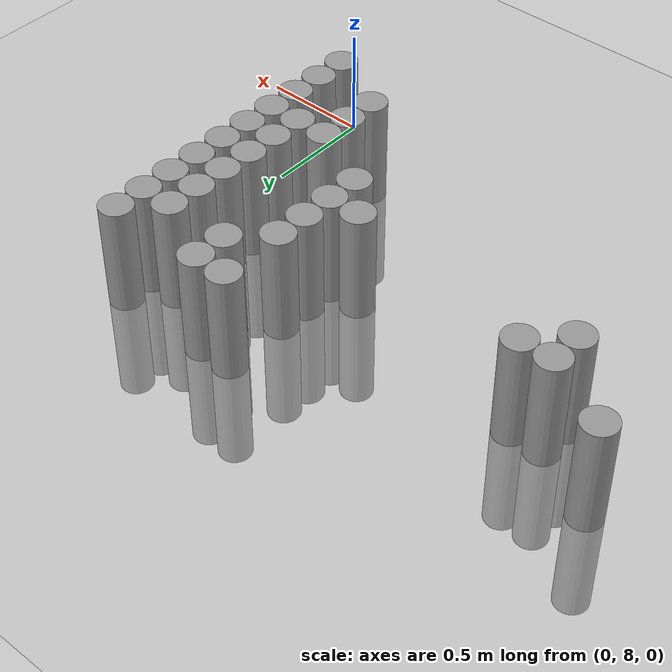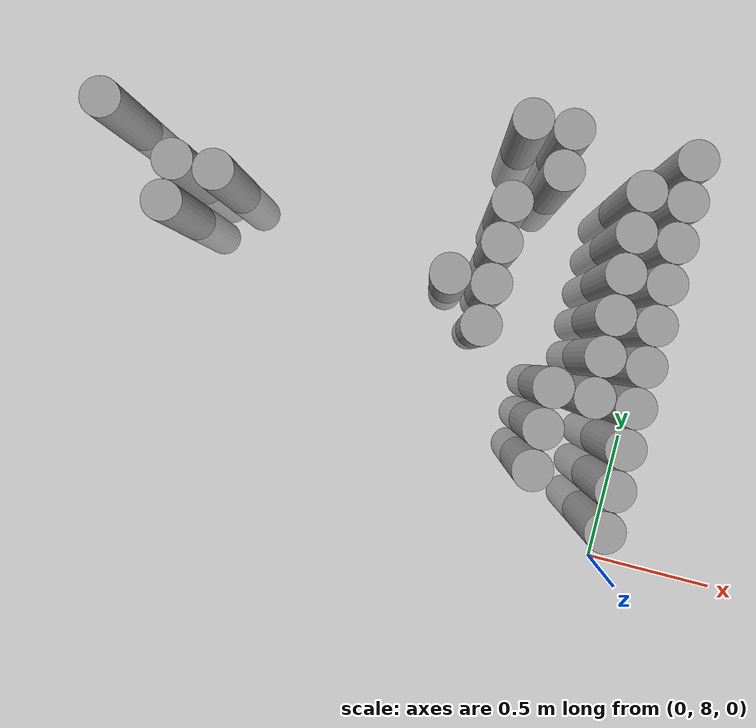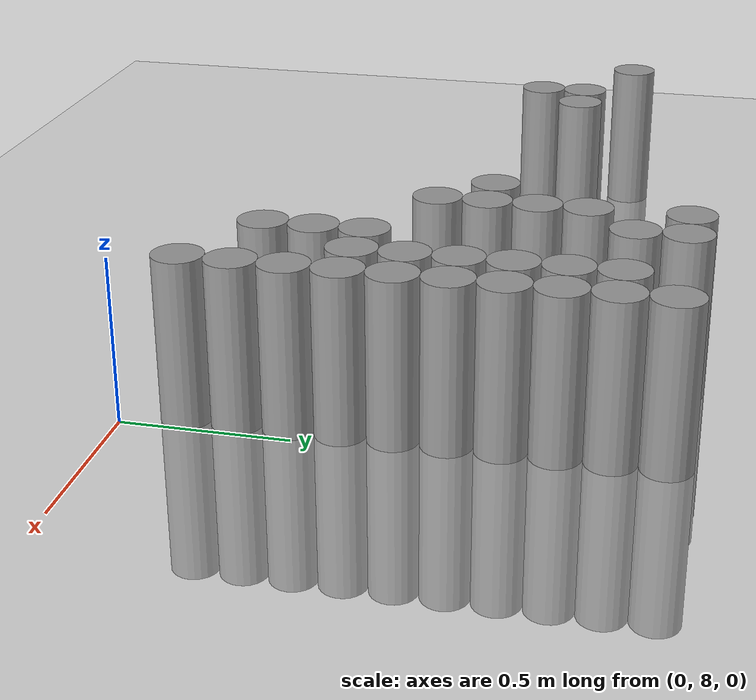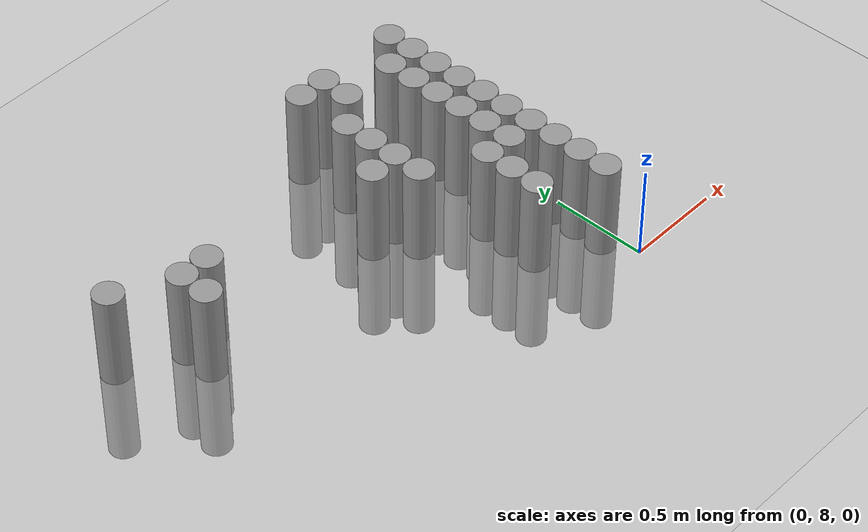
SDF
<sdf version="1.6">
 <world name="default">
  <model name="ground_plane">
   <static>1</static>
   <static>1</static>
   <link name="link">
    <collision name="collision">
     <geometry><plane><normal>0 0 1</normal><size>100 100</size></plane></geometry>
     <surface><friction><ode><mu>100</mu><mu2>50</mu2></ode></friction></surface>
    </collision>
    <visual name="visual">
     <cast_shadows>0</cast_shadows>
     <geometry><plane><normal>0 0 1</normal><size>100 100</size></plane></geometry>
     <material>
      <script><uri>file://media/materials/scripts/gazebo.material</uri><name>Gazebo/Grey</name></script>
     </material>
    </visual>
   </link>
  </model>
  <model name="unit_cylinder_166">
   <static>1</static>
   <pose>-2.175000 9.225000 0.000000 0.000000 0.000000 0.000000</pose>
   <link name="link">
    <inertial>
     <mass>1</mass>
     <inertia><ixx>0.145833</ixx><ixy>0</ixy><ixz>0</ixz><iyy>0.145833</iyy><iyz>0</iyz><izz>0.125</izz></inertia>
    </inertial>
    <collision name="collision">
     <geometry><cylinder><radius>0.075000</radius><length>1</length></cylinder></geometry>
    </collision>
    <visual name="visual">
     <geometry><cylinder><radius>0.075000</radius><length>1</length></cylinder></geometry>
     <material>
      <script><name>Gazebo/Grey</name><uri>file://media/materials/scripts/gazebo.material</uri></script>
     </material>
    </visual>
   </link>
  </model>
  <model name="unit_cylinder_170">
   <static>1</static>
   <pose>-1.875000 8.925000 0.000000 0.000000 0.000000 0.000000</pose>
   <link name="link">
    <inertial>
     <mass>1</mass>
     <inertia><ixx>0.145833</ixx><ixy>0</ixy><ixz>0</ixz><iyy>0.145833</iyy><iyz>0</iyz><izz>0.125</izz></inertia>
    </inertial>
    <collision name="collision">
     <geometry><cylinder><radius>0.075000</radius><length>1</length></cylinder></geometry>
    </collision>
    <visual name="visual">
     <geometry><cylinder><radius>0.075000</radius><length>1</length></cylinder></geometry>
     <material>
      <script><name>Gazebo/Grey</name><uri>file://media/materials/scripts/gazebo.material</uri></script>
     </material>
    </visual>
   </link>
  </model>
  <model name="unit_cylinder_171">
   <static>1</static>
   <pose>-1.875000 9.075000 0.000000 0.000000 0.000000 0.000000</pose>
   <link name="link">
    <inertial>
     <mass>1</mass>
     <inertia><ixx>0.145833</ixx><ixy>0</ixy><ixz>0</ixz><iyy>0.145833</iyy><iyz>0</iyz><izz>0.125</izz></inertia>
    </inertial>
    <collision name="collision">
     <geometry><cylinder><radius>0.075000</radius><length>1</length></cylinder></geometry>
    </collision>
    <visual name="visual">
     <geometry><cylinder><radius>0.075000</radius><length>1</length></cylinder></geometry>
     <material>
      <script><name>Gazebo/Grey</name><uri>file://media/materials/scripts/gazebo.material</uri></script>
     </material>
    </visual>
   </link>
  </model>
  <model name="unit_cylinder_175">
   <static>1</static>
   <pose>-1.725000 9.075000 0.000000 0.000000 0.000000 0.000000</pose>
   <link name="link">
    <inertial>
     <mass>1</mass>
     <inertia><ixx>0.145833</ixx><ixy>0</ixy><ixz>0</ixz><iyy>0.145833</iyy><iyz>0</iyz><izz>0.125</izz></inertia>
    </inertial>
    <collision name="collision">
     <geometry><cylinder><radius>0.075000</radius><length>1</length></cylinder></geometry>
    </collision>
    <visual name="visual">
     <geometry><cylinder><radius>0.075000</radius><length>1</length></cylinder></geometry>
     <material>
      <script><name>Gazebo/Grey</name><uri>file://media/materials/scripts/gazebo.material</uri></script>
     </material>
    </visual>
   </link>
  </model>
  <model name="unit_cylinder_182">
   <static>1</static>
   <pose>-0.825000 8.925000 0.000000 0.000000 0.000000 0.000000</pose>
   <link name="link">
    <inertial>
     <mass>1</mass>
     <inertia><ixx>0.145833</ixx><ixy>0</ixy><ixz>0</ixz><iyy>0.145833</iyy><iyz>0</iyz><izz>0.125</izz></inertia>
    </inertial>
    <collision name="collision">
     <geometry><cylinder><radius>0.075000</radius><length>1</length></cylinder></geometry>
    </collision>
    <visual name="visual">
     <geometry><cylinder><radius>0.075000</radius><length>1</length></cylinder></geometry>
     <material>
      <script><name>Gazebo/Grey</name><uri>file://media/materials/scripts/gazebo.material</uri></script>
     </material>
    </visual>
   </link>
  </model>
  <model name="unit_cylinder_185">
   <static>1</static>
   <pose>-0.675000 8.775000 0.000000 0.000000 0.000000 0.000000</pose>
   <link name="link">
    <inertial>
     <mass>1</mass>
     <inertia><ixx>0.145833</ixx><ixy>0</ixy><ixz>0</ixz><iyy>0.145833</iyy><iyz>0</iyz><izz>0.125</izz></inertia>
    </inertial>
    <collision name="collision">
     <geometry><cylinder><radius>0.075000</radius><length>1</length></cylinder></geometry>
    </collision>
    <visual name="visual">
     <geometry><cylinder><radius>0.075000</radius><length>1</length></cylinder></geometry>
     <material>
      <script><name>Gazebo/Grey</name><uri>file://media/materials/scripts/gazebo.material</uri></script>
     </material>
    </visual>
   </link>
  </model>
  <model name="unit_cylinder_186">
   <static>1</static>
   <pose>-0.675000 8.925000 0.000000 0.000000 0.000000 0.000000</pose>
   <link name="link">
    <inertial>
     <mass>1</mass>
     <inertia><ixx>0.145833</ixx><ixy>0</ixy><ixz>0</ixz><iyy>0.145833</iyy><iyz>0</iyz><izz>0.125</izz></inertia>
    </inertial>
    <collision name="collision">
     <geometry><cylinder><radius>0.075000</radius><length>1</length></cylinder></geometry>
    </collision>
    <visual name="visual">
     <geometry><cylinder><radius>0.075000</radius><length>1</length></cylinder></geometry>
     <material>
      <script><name>Gazebo/Grey</name><uri>file://media/materials/scripts/gazebo.material</uri></script>
     </material>
    </visual>
   </link>
  </model>
  <model name="unit_cylinder_187">
   <static>1</static>
   <pose>-0.675000 9.075000 0.000000 0.000000 0.000000 0.000000</pose>
   <link name="link">
    <inertial>
     <mass>1</mass>
     <inertia><ixx>0.145833</ixx><ixy>0</ixy><ixz>0</ixz><iyy>0.145833</iyy><iyz>0</iyz><izz>0.125</izz></inertia>
    </inertial>
    <collision name="collision">
     <geometry><cylinder><radius>0.075000</radius><length>1</length></cylinder></geometry>
    </collision>
    <visual name="visual">
     <geometry><cylinder><radius>0.075000</radius><length>1</length></cylinder></geometry>
     <material>
      <script><name>Gazebo/Grey</name><uri>file://media/materials/scripts/gazebo.material</uri></script>
     </material>
    </visual>
   </link>
  </model>
  <model name="unit_cylinder_188">
   <static>1</static>
   <pose>-0.675000 9.225000 0.000000 0.000000 0.000000 0.000000</pose>
   <link name="link">
    <inertial>
     <mass>1</mass>
     <inertia><ixx>0.145833</ixx><ixy>0</ixy><ixz>0</ixz><iyy>0.145833</iyy><iyz>0</iyz><izz>0.125</izz></inertia>
    </inertial>
    <collision name="collision">
     <geometry><cylinder><radius>0.075000</radius><length>1</length></cylinder></geometry>
    </collision>
    <visual name="visual">
     <geometry><cylinder><radius>0.075000</radius><length>1</length></cylinder></geometry>
     <material>
      <script><name>Gazebo/Grey</name><uri>file://media/materials/scripts/gazebo.material</uri></script>
     </material>
    </visual>
   </link>
  </model>
  <model name="unit_cylinder_189">
   <static>1</static>
   <pose>-0.675000 9.525000 0.000000 0.000000 0.000000 0.000000</pose>
   <link name="link">
    <inertial>
     <mass>1</mass>
     <inertia><ixx>0.145833</ixx><ixy>0</ixy><ixz>0</ixz><iyy>0.145833</iyy><iyz>0</iyz><izz>0.125</izz></inertia>
    </inertial>
    <collision name="collision">
     <geometry><cylinder><radius>0.075000</radius><length>1</length></cylinder></geometry>
    </collision>
    <visual name="visual">
     <geometry><cylinder><radius>0.075000</radius><length>1</length></cylinder></geometry>
     <material>
      <script><name>Gazebo/Grey</name><uri>file://media/materials/scripts/gazebo.material</uri></script>
     </material>
    </visual>
   </link>
  </model>
  <model name="unit_cylinder_192">
   <static>1</static>
   <pose>-0.525000 9.375000 0.000000 0.000000 0.000000 0.000000</pose>
   <link name="link">
    <inertial>
     <mass>1</mass>
     <inertia><ixx>0.145833</ixx><ixy>0</ixy><ixz>0</ixz><iyy>0.145833</iyy><iyz>0</iyz><izz>0.125</izz></inertia>
    </inertial>
    <collision name="collision">
     <geometry><cylinder><radius>0.075000</radius><length>1</length></cylinder></geometry>
    </collision>
    <visual name="visual">
     <geometry><cylinder><radius>0.075000</radius><length>1</length></cylinder></geometry>
     <material>
      <script><name>Gazebo/Grey</name><uri>file://media/materials/scripts/gazebo.material</uri></script>
     </material>
    </visual>
   </link>
  </model>
  <model name="unit_cylinder_193">
   <static>1</static>
   <pose>-0.525000 9.525000 0.000000 0.000000 0.000000 0.000000</pose>
   <link name="link">
    <inertial>
     <mass>1</mass>
     <inertia><ixx>0.145833</ixx><ixy>0</ixy><ixz>0</ixz><iyy>0.145833</iyy><iyz>0</iyz><izz>0.125</izz></inertia>
    </inertial>
    <collision name="collision">
     <geometry><cylinder><radius>0.075000</radius><length>1</length></cylinder></geometry>
    </collision>
    <visual name="visual">
     <geometry><cylinder><radius>0.075000</radius><length>1</length></cylinder></geometry>
     <material>
      <script><name>Gazebo/Grey</name><uri>file://media/materials/scripts/gazebo.material</uri></script>
     </material>
    </visual>
   </link>
  </model>
  <model name="unit_cylinder_197">
   <static>1</static>
   <pose>-0.375000 8.325000 0.000000 0.000000 0.000000 0.000000</pose>
   <link name="link">
    <inertial>
     <mass>1</mass>
     <inertia><ixx>0.145833</ixx><ixy>0</ixy><ixz>0</ixz><iyy>0.145833</iyy><iyz>0</iyz><izz>0.125</izz></inertia>
    </inertial>
    <collision name="collision">
     <geometry><cylinder><radius>0.075000</radius><length>1</length></cylinder></geometry>
    </collision>
    <visual name="visual">
     <geometry><cylinder><radius>0.075000</radius><length>1</length></cylinder></geometry>
     <material>
      <script><name>Gazebo/Grey</name><uri>file://media/materials/scripts/gazebo.material</uri></script>
     </material>
    </visual>
   </link>
  </model>
  <model name="unit_cylinder_198">
   <static>1</static>
   <pose>-0.375000 8.475000 0.000000 0.000000 0.000000 0.000000</pose>
   <link name="link">
    <inertial>
     <mass>1</mass>
     <inertia><ixx>0.145833</ixx><ixy>0</ixy><ixz>0</ixz><iyy>0.145833</iyy><iyz>0</iyz><izz>0.125</izz></inertia>
    </inertial>
    <collision name="collision">
     <geometry><cylinder><radius>0.075000</radius><length>1</length></cylinder></geometry>
    </collision>
    <visual name="visual">
     <geometry><cylinder><radius>0.075000</radius><length>1</length></cylinder></geometry>
     <material>
      <script><name>Gazebo/Grey</name><uri>file://media/materials/scripts/gazebo.material</uri></script>
     </material>
    </visual>
   </link>
  </model>
  <model name="unit_cylinder_199">
   <static>1</static>
   <pose>-0.375000 8.625000 0.000000 0.000000 0.000000 0.000000</pose>
   <link name="link">
    <inertial>
     <mass>1</mass>
     <inertia><ixx>0.145833</ixx><ixy>0</ixy><ixz>0</ixz><iyy>0.145833</iyy><iyz>0</iyz><izz>0.125</izz></inertia>
    </inertial>
    <collision name="collision">
     <geometry><cylinder><radius>0.075000</radius><length>1</length></cylinder></geometry>
    </collision>
    <visual name="visual">
     <geometry><cylinder><radius>0.075000</radius><length>1</length></cylinder></geometry>
     <material>
      <script><name>Gazebo/Grey</name><uri>file://media/materials/scripts/gazebo.material</uri></script>
     </material>
    </visual>
   </link>
  </model>
  <model name="unit_cylinder_205">
   <static>1</static>
   <pose>-0.225000 8.625000 0.000000 0.000000 0.000000 0.000000</pose>
   <link name="link">
    <inertial>
     <mass>1</mass>
     <inertia><ixx>0.145833</ixx><ixy>0</ixy><ixz>0</ixz><iyy>0.145833</iyy><iyz>0</iyz><izz>0.125</izz></inertia>
    </inertial>
    <collision name="collision">
     <geometry><cylinder><radius>0.075000</radius><length>1</length></cylinder></geometry>
    </collision>
    <visual name="visual">
     <geometry><cylinder><radius>0.075000</radius><length>1</length></cylinder></geometry>
     <material>
      <script><name>Gazebo/Grey</name><uri>file://media/materials/scripts/gazebo.material</uri></script>
     </material>
    </visual>
   </link>
  </model>
  <model name="unit_cylinder_206">
   <static>1</static>
   <pose>-0.225000 8.775000 0.000000 0.000000 0.000000 0.000000</pose>
   <link name="link">
    <inertial>
     <mass>1</mass>
     <inertia><ixx>0.145833</ixx><ixy>0</ixy><ixz>0</ixz><iyy>0.145833</iyy><iyz>0</iyz><izz>0.125</izz></inertia>
    </inertial>
    <collision name="collision">
     <geometry><cylinder><radius>0.075000</radius><length>1</length></cylinder></geometry>
    </collision>
    <visual name="visual">
     <geometry><cylinder><radius>0.075000</radius><length>1</length></cylinder></geometry>
     <material>
      <script><name>Gazebo/Grey</name><uri>file://media/materials/scripts/gazebo.material</uri></script>
     </material>
    </visual>
   </link>
  </model>
  <model name="unit_cylinder_207">
   <static>1</static>
   <pose>-0.225000 8.925000 0.000000 0.000000 0.000000 0.000000</pose>
   <link name="link">
    <inertial>
     <mass>1</mass>
     <inertia><ixx>0.145833</ixx><ixy>0</ixy><ixz>0</ixz><iyy>0.145833</iyy><iyz>0</iyz><izz>0.125</izz></inertia>
    </inertial>
    <collision name="collision">
     <geometry><cylinder><radius>0.075000</radius><length>1</length></cylinder></geometry>
    </collision>
    <visual name="visual">
     <geometry><cylinder><radius>0.075000</radius><length>1</length></cylinder></geometry>
     <material>
      <script><name>Gazebo/Grey</name><uri>file://media/materials/scripts/gazebo.material</uri></script>
     </material>
    </visual>
   </link>
  </model>
  <model name="unit_cylinder_208">
   <static>1</static>
   <pose>-0.225000 9.075000 0.000000 0.000000 0.000000 0.000000</pose>
   <link name="link">
    <inertial>
     <mass>1</mass>
     <inertia><ixx>0.145833</ixx><ixy>0</ixy><ixz>0</ixz><iyy>0.145833</iyy><iyz>0</iyz><izz>0.125</izz></inertia>
    </inertial>
    <collision name="collision">
     <geometry><cylinder><radius>0.075000</radius><length>1</length></cylinder></geometry>
    </collision>
    <visual name="visual">
     <geometry><cylinder><radius>0.075000</radius><length>1</length></cylinder></geometry>
     <material>
      <script><name>Gazebo/Grey</name><uri>file://media/materials/scripts/gazebo.material</uri></script>
     </material>
    </visual>
   </link>
  </model>
  <model name="unit_cylinder_209">
   <static>1</static>
   <pose>-0.225000 9.225000 0.000000 0.000000 0.000000 0.000000</pose>
   <link name="link">
    <inertial>
     <mass>1</mass>
     <inertia><ixx>0.145833</ixx><ixy>0</ixy><ixz>0</ixz><iyy>0.145833</iyy><iyz>0</iyz><izz>0.125</izz></inertia>
    </inertial>
    <collision name="collision">
     <geometry><cylinder><radius>0.075000</radius><length>1</length></cylinder></geometry>
    </collision>
    <visual name="visual">
     <geometry><cylinder><radius>0.075000</radius><length>1</length></cylinder></geometry>
     <material>
      <script><name>Gazebo/Grey</name><uri>file://media/materials/scripts/gazebo.material</uri></script>
     </material>
    </visual>
   </link>
  </model>
  <model name="unit_cylinder_210">
   <static>1</static>
   <pose>-0.225000 9.375000 0.000000 0.000000 0.000000 0.000000</pose>
   <link name="link">
    <inertial>
     <mass>1</mass>
     <inertia><ixx>0.145833</ixx><ixy>0</ixy><ixz>0</ixz><iyy>0.145833</iyy><iyz>0</iyz><izz>0.125</izz></inertia>
    </inertial>
    <collision name="collision">
     <geometry><cylinder><radius>0.075000</radius><length>1</length></cylinder></geometry>
    </collision>
    <visual name="visual">
     <geometry><cylinder><radius>0.075000</radius><length>1</length></cylinder></geometry>
     <material>
      <script><name>Gazebo/Grey</name><uri>file://media/materials/scripts/gazebo.material</uri></script>
     </material>
    </visual>
   </link>
  </model>
  <model name="unit_cylinder_231">
   <static>1</static>
   <pose>-0.075000 8.175000 0.000000 0.000000 0.000000 0.000000</pose>
   <link name="link">
    <inertial>
     <mass>1</mass>
     <inertia><ixx>0.145833</ixx><ixy>0</ixy><ixz>0</ixz><iyy>0.145833</iyy><iyz>0</iyz><izz>0.125</izz></inertia>
    </inertial>
    <collision name="collision">
     <geometry><cylinder><radius>0.075000</radius><length>1</length></cylinder></geometry>
    </collision>
    <visual name="visual">
     <geometry><cylinder><radius>0.075000</radius><length>1</length></cylinder></geometry>
     <material>
      <script><name>Gazebo/Grey</name><uri>file://media/materials/scripts/gazebo.material</uri></script>
     </material>
    </visual>
   </link>
  </model>
  <model name="unit_cylinder_232">
   <static>1</static>
   <pose>-0.075000 8.325000 0.000000 0.000000 0.000000 0.000000</pose>
   <link name="link">
    <inertial>
     <mass>1</mass>
     <inertia><ixx>0.145833</ixx><ixy>0</ixy><ixz>0</ixz><iyy>0.145833</iyy><iyz>0</iyz><izz>0.125</izz></inertia>
    </inertial>
    <collision name="collision">
     <geometry><cylinder><radius>0.075000</radius><length>1</length></cylinder></geometry>
    </collision>
    <visual name="visual">
     <geometry><cylinder><radius>0.075000</radius><length>1</length></cylinder></geometry>
     <material>
      <script><name>Gazebo/Grey</name><uri>file://media/materials/scripts/gazebo.material</uri></script>
     </material>
    </visual>
   </link>
  </model>
  <model name="unit_cylinder_233">
   <static>1</static>
   <pose>-0.075000 8.475000 0.000000 0.000000 0.000000 0.000000</pose>
   <link name="link">
    <inertial>
     <mass>1</mass>
     <inertia><ixx>0.145833</ixx><ixy>0</ixy><ixz>0</ixz><iyy>0.145833</iyy><iyz>0</iyz><izz>0.125</izz></inertia>
    </inertial>
    <collision name="collision">
     <geometry><cylinder><radius>0.075000</radius><length>1</length></cylinder></geometry>
    </collision>
    <visual name="visual">
     <geometry><cylinder><radius>0.075000</radius><length>1</length></cylinder></geometry>
     <material>
      <script><name>Gazebo/Grey</name><uri>file://media/materials/scripts/gazebo.material</uri></script>
     </material>
    </visual>
   </link>
  </model>
  <model name="unit_cylinder_234">
   <static>1</static>
   <pose>-0.075000 8.625000 0.000000 0.000000 0.000000 0.000000</pose>
   <link name="link">
    <inertial>
     <mass>1</mass>
     <inertia><ixx>0.145833</ixx><ixy>0</ixy><ixz>0</ixz><iyy>0.145833</iyy><iyz>0</iyz><izz>0.125</izz></inertia>
    </inertial>
    <collision name="collision">
     <geometry><cylinder><radius>0.075000</radius><length>1</length></cylinder></geometry>
    </collision>
    <visual name="visual">
     <geometry><cylinder><radius>0.075000</radius><length>1</length></cylinder></geometry>
     <material>
      <script><name>Gazebo/Grey</name><uri>file://media/materials/scripts/gazebo.material</uri></script>
     </material>
    </visual>
   </link>
  </model>
  <model name="unit_cylinder_235">
   <static>1</static>
   <pose>-0.075000 8.775000 0.000000 0.000000 0.000000 0.000000</pose>
   <link name="link">
    <inertial>
     <mass>1</mass>
     <inertia><ixx>0.145833</ixx><ixy>0</ixy><ixz>0</ixz><iyy>0.145833</iyy><iyz>0</iyz><izz>0.125</izz></inertia>
    </inertial>
    <collision name="collision">
     <geometry><cylinder><radius>0.075000</radius><length>1</length></cylinder></geometry>
    </collision>
    <visual name="visual">
     <geometry><cylinder><radius>0.075000</radius><length>1</length></cylinder></geometry>
     <material>
      <script><name>Gazebo/Grey</name><uri>file://media/materials/scripts/gazebo.material</uri></script>
     </material>
    </visual>
   </link>
  </model>
  <model name="unit_cylinder_236">
   <static>1</static>
   <pose>-0.075000 8.925000 0.000000 0.000000 0.000000 0.000000</pose>
   <link name="link">
    <inertial>
     <mass>1</mass>
     <inertia><ixx>0.145833</ixx><ixy>0</ixy><ixz>0</ixz><iyy>0.145833</iyy><iyz>0</iyz><izz>0.125</izz></inertia>
    </inertial>
    <collision name="collision">
     <geometry><cylinder><radius>0.075000</radius><length>1</length></cylinder></geometry>
    </collision>
    <visual name="visual">
     <geometry><cylinder><radius>0.075000</radius><length>1</length></cylinder></geometry>
     <material>
      <script><name>Gazebo/Grey</name><uri>file://media/materials/scripts/gazebo.material</uri></script>
     </material>
    </visual>
   </link>
  </model>
  <model name="unit_cylinder_237">
   <static>1</static>
   <pose>-0.075000 9.075000 0.000000 0.000000 0.000000 0.000000</pose>
   <link name="link">
    <inertial>
     <mass>1</mass>
     <inertia><ixx>0.145833</ixx><ixy>0</ixy><ixz>0</ixz><iyy>0.145833</iyy><iyz>0</iyz><izz>0.125</izz></inertia>
    </inertial>
    <collision name="collision">
     <geometry><cylinder><radius>0.075000</radius><length>1</length></cylinder></geometry>
    </collision>
    <visual name="visual">
     <geometry><cylinder><radius>0.075000</radius><length>1</length></cylinder></geometry>
     <material>
      <script><name>Gazebo/Grey</name><uri>file://media/materials/scripts/gazebo.material</uri></script>
     </material>
    </visual>
   </link>
  </model>
  <model name="unit_cylinder_238">
   <static>1</static>
   <pose>-0.075000 9.225000 0.000000 0.000000 0.000000 0.000000</pose>
   <link name="link">
    <inertial>
     <mass>1</mass>
     <inertia><ixx>0.145833</ixx><ixy>0</ixy><ixz>0</ixz><iyy>0.145833</iyy><iyz>0</iyz><izz>0.125</izz></inertia>
    </inertial>
    <collision name="collision">
     <geometry><cylinder><radius>0.075000</radius><length>1</length></cylinder></geometry>
    </collision>
    <visual name="visual">
     <geometry><cylinder><radius>0.075000</radius><length>1</length></cylinder></geometry>
     <material>
      <script><name>Gazebo/Grey</name><uri>file://media/materials/scripts/gazebo.material</uri></script>
     </material>
    </visual>
   </link>
  </model>
  <model name="unit_cylinder_239">
   <static>1</static>
   <pose>-0.075000 9.375000 0.000000 0.000000 0.000000 0.000000</pose>
   <link name="link">
    <inertial>
     <mass>1</mass>
     <inertia><ixx>0.145833</ixx><ixy>0</ixy><ixz>0</ixz><iyy>0.145833</iyy><iyz>0</iyz><izz>0.125</izz></inertia>
    </inertial>
    <collision name="collision">
     <geometry><cylinder><radius>0.075000</radius><length>1</length></cylinder></geometry>
    </collision>
    <visual name="visual">
     <geometry><cylinder><radius>0.075000</radius><length>1</length></cylinder></geometry>
     <material>
      <script><name>Gazebo/Grey</name><uri>file://media/materials/scripts/gazebo.material</uri></script>
     </material>
    </visual>
   </link>
  </model>
  <model name="unit_cylinder_240">
   <static>1</static>
   <pose>-0.075000 9.525000 0.000000 0.000000 0.000000 0.000000</pose>
   <link name="link">
    <inertial>
     <mass>1</mass>
     <inertia><ixx>0.145833</ixx><ixy>0</ixy><ixz>0</ixz><iyy>0.145833</iyy><iyz>0</iyz><izz>0.125</izz></inertia>
    </inertial>
    <collision name="collision">
     <geometry><cylinder><radius>0.075000</radius><length>1</length></cylinder></geometry>
    </collision>
    <visual name="visual">
     <geometry><cylinder><radius>0.075000</radius><length>1</length></cylinder></geometry>
     <material>
      <script><name>Gazebo/Grey</name><uri>file://media/materials/scripts/gazebo.material</uri></script>
     </material>
    </visual>
   </link>
  </model>
 </world>
</sdf>
